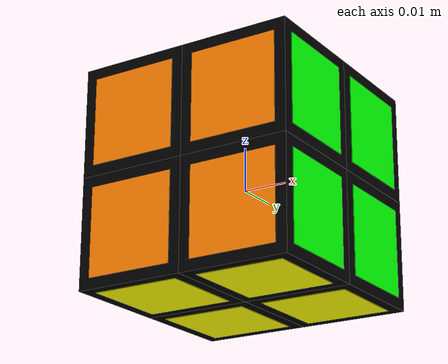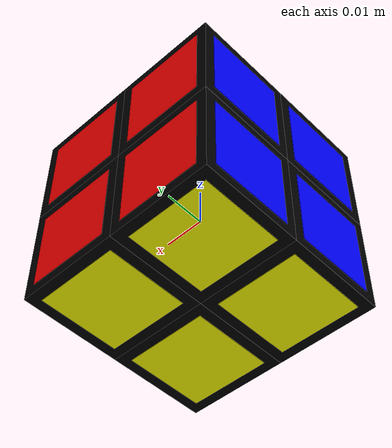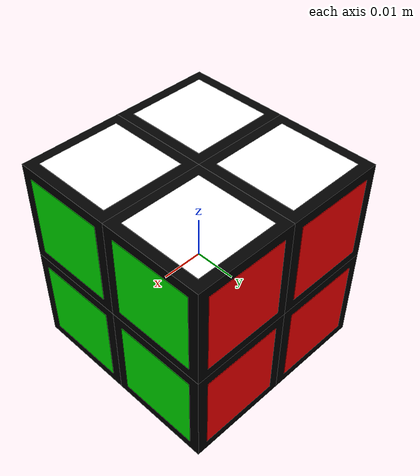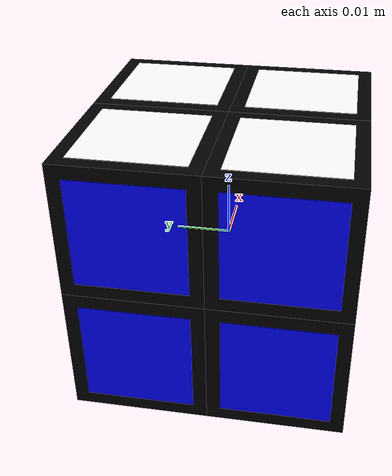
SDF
<?xml version="1.0"?>

<sdf version="1.7">
  <model name="rubiks_cube">
    <link name="center"/>
    <link name="box_0_0_0">
      <pose>-0.0125 -0.0125 -0.0125 0 0 0</pose>
      <inertial>
        <mass>0.03</mass>
        <inertia>
          <ixx>0.0003125</ixx>
          <ixy>0.0</ixy>
          <ixz>0.0</ixz>
          <iyy>0.0003125</iyy>
          <iyz>0.0</iyz>
          <izz>0.0003125</izz>
        </inertia>
      </inertial>
      <collision name="collision">
        <geometry>
          <box>
            <size>0.025 0.025 0.025</size>
          </box>
        </geometry>
      </collision>
      <visual name="black">
        <geometry>
          <box>
            <size>0.025 0.025 0.025</size>
          </box>
        </geometry>
        <material>
          <diffuse>0 0 0 1</diffuse>
        </material>
      </visual>
      <visual name="blue">
        <pose>-0.0125 0 0 0 0 0</pose>
        <geometry>
          <box>
            <size>0.0002 0.02 0.02</size>
          </box>
        </geometry>
        <material>
          <diffuse>0 0 1 1</diffuse>
        </material>
      </visual>
      <visual name="orange">
        <pose>0 -0.0125 0 0 0 0</pose>
        <geometry>
          <box>
            <size>0.02 0.0002 0.02</size>
          </box>
        </geometry>
        <material>
          <diffuse>1 0.5 0 1</diffuse>
        </material>
      </visual>
      <visual name="yellow">
        <pose>0 0 -0.0125 0 0 0</pose>
        <geometry>
          <box>
            <size>0.02 0.02 0.0002</size>
          </box>
        </geometry>
        <material>
          <diffuse>1 1 0 1</diffuse>
        </material>
      </visual>
    </link>
    <joint name="ball_0_0_0" type="fixed">
        <pose>0.0125 0.0125 0.0125 0 0 0</pose> <!-- in child frame -->
        <parent>center</parent>
        <child>box_0_0_0</child>
        <axis>
            <dynamics><damping>0.1</damping></dynamics>
            <limit><effort>0</effort></limit>
        </axis>
    </joint>
    <link name="box_1_0_0">
      <pose>0.0125 -0.0125 -0.0125 0 0 0</pose>
      <inertial>
        <mass>0.03</mass>
        <inertia>
          <ixx>0.0003125</ixx>
          <ixy>0.0</ixy>
          <ixz>0.0</ixz>
          <iyy>0.0003125</iyy>
          <iyz>0.0</iyz>
          <izz>0.0003125</izz>
        </inertia>
      </inertial>
      <collision name="collision">
        <geometry>
          <box>
            <size>0.025 0.025 0.025</size>
          </box>
        </geometry>
      </collision>
      <visual name="black">
        <geometry>
          <box>
            <size>0.025 0.025 0.025</size>
          </box>
        </geometry>
        <material>
          <diffuse>0 0 0 1</diffuse>
        </material>
      </visual>
      <visual name="green">
        <pose>0.0125 0 0 0 0 0</pose>
        <geometry>
          <box>
            <size>0.0002 0.02 0.02</size>
          </box>
        </geometry>
        <material>
          <diffuse>0 1 0 1</diffuse>
        </material>
      </visual>
      <visual name="orange">
        <pose>0 -0.0125 0 0 0 0</pose>
        <geometry>
          <box>
            <size>0.02 0.0002 0.02</size>
          </box>
        </geometry>
        <material>
          <diffuse>1 0.5 0 1</diffuse>
        </material>
      </visual>
      <visual name="yellow">
        <pose>0 0 -0.0125 0 0 0</pose>
        <geometry>
          <box>
            <size>0.02 0.02 0.0002</size>
          </box>
        </geometry>
        <material>
          <diffuse>1 1 0 1</diffuse>
        </material>
      </visual>
    </link>
    <joint name="ball_1_0_0" type="fixed">
        <pose>-0.0125 0.0125 0.0125 0 0 0</pose> <!-- in child frame -->
        <parent>center</parent>
        <child>box_1_0_0</child>
        <axis>
            <dynamics><damping>0.1</damping></dynamics>
            <limit><effort>0</effort></limit>
        </axis>
    </joint>
    <link name="box_0_1_0">
      <pose>-0.0125 0.0125 -0.0125 0 0 0</pose>
      <inertial>
        <mass>0.03</mass>
        <inertia>
          <ixx>0.0003125</ixx>
          <ixy>0.0</ixy>
          <ixz>0.0</ixz>
          <iyy>0.0003125</iyy>
          <iyz>0.0</iyz>
          <izz>0.0003125</izz>
        </inertia>
      </inertial>
      <collision name="collision">
        <geometry>
          <box>
            <size>0.025 0.025 0.025</size>
          </box>
        </geometry>
      </collision>
      <visual name="black">
        <geometry>
          <box>
            <size>0.025 0.025 0.025</size>
          </box>
        </geometry>
        <material>
          <diffuse>0 0 0 1</diffuse>
        </material>
      </visual>
      <visual name="blue">
        <pose>-0.0125 0 0 0 0 0</pose>
        <geometry>
          <box>
            <size>0.0002 0.02 0.02</size>
          </box>
        </geometry>
        <material>
          <diffuse>0 0 1 1</diffuse>
        </material>
      </visual>
      <visual name="red">
        <pose>0 0.0125 0 0 0 0</pose>
        <geometry>
          <box>
            <size>0.02 0.0002 0.02</size>
          </box>
        </geometry>
        <material>
          <diffuse>1 0 0 1</diffuse>
        </material>
      </visual>
      <visual name="yellow">
        <pose>0 0 -0.0125 0 0 0</pose>
        <geometry>
          <box>
            <size>0.02 0.02 0.0002</size>
          </box>
        </geometry>
        <material>
          <diffuse>1 1 0 1</diffuse>
        </material>
      </visual>
    </link>
    <joint name="ball_0_1_0" type="fixed">
        <pose>0.0125 -0.0125 0.0125 0 0 0</pose> <!-- in child frame -->
        <parent>center</parent>
        <child>box_0_1_0</child>
        <axis>
            <dynamics><damping>0.1</damping></dynamics>
            <limit><effort>0</effort></limit>
        </axis>
    </joint>
    <link name="box_1_1_0">
      <pose>0.0125 0.0125 -0.0125 0 0 0</pose>
      <inertial>
        <mass>0.03</mass>
        <inertia>
          <ixx>0.0003125</ixx>
          <ixy>0.0</ixy>
          <ixz>0.0</ixz>
          <iyy>0.0003125</iyy>
          <iyz>0.0</iyz>
          <izz>0.0003125</izz>
        </inertia>
      </inertial>
      <collision name="collision">
        <geometry>
          <box>
            <size>0.025 0.025 0.025</size>
          </box>
        </geometry>
      </collision>
      <visual name="black">
        <geometry>
          <box>
            <size>0.025 0.025 0.025</size>
          </box>
        </geometry>
        <material>
          <diffuse>0 0 0 1</diffuse>
        </material>
      </visual>
      <visual name="green">
        <pose>0.0125 0 0 0 0 0</pose>
        <geometry>
          <box>
            <size>0.0002 0.02 0.02</size>
          </box>
        </geometry>
        <material>
          <diffuse>0 1 0 1</diffuse>
        </material>
      </visual>
      <visual name="red">
        <pose>0 0.0125 0 0 0 0</pose>
        <geometry>
          <box>
            <size>0.02 0.0002 0.02</size>
          </box>
        </geometry>
        <material>
          <diffuse>1 0 0 1</diffuse>
        </material>
      </visual>
      <visual name="yellow">
        <pose>0 0 -0.0125 0 0 0</pose>
        <geometry>
          <box>
            <size>0.02 0.02 0.0002</size>
          </box>
        </geometry>
        <material>
          <diffuse>1 1 0 1</diffuse>
        </material>
      </visual>
    </link>
    <joint name="ball_1_1_0" type="fixed">
        <pose>-0.0125 -0.0125 0.0125 0 0 0</pose> <!-- in child frame -->
        <parent>center</parent>
        <child>box_1_1_0</child>
        <axis>
            <dynamics><damping>0.1</damping></dynamics>
            <limit><effort>0</effort></limit>
        </axis>
    </joint>
    <link name="box_0_0_1">
      <pose>-0.0125 -0.0125 0.0125 0 0 0</pose>
      <inertial>
        <mass>0.03</mass>
        <inertia>
          <ixx>0.0003125</ixx>
          <ixy>0.0</ixy>
          <ixz>0.0</ixz>
          <iyy>0.0003125</iyy>
          <iyz>0.0</iyz>
          <izz>0.0003125</izz>
        </inertia>
      </inertial>
      <collision name="collision">
        <geometry>
          <box>
            <size>0.025 0.025 0.025</size>
          </box>
        </geometry>
      </collision>
      <visual name="black">
        <geometry>
          <box>
            <size>0.025 0.025 0.025</size>
          </box>
        </geometry>
        <material>
          <diffuse>0 0 0 1</diffuse>
        </material>
      </visual>
      <visual name="blue">
        <pose>-0.0125 0 0 0 0 0</pose>
        <geometry>
          <box>
            <size>0.0002 0.02 0.02</size>
          </box>
        </geometry>
        <material>
          <diffuse>0 0 1 1</diffuse>
        </material>
      </visual>
      <visual name="orange">
        <pose>0 -0.0125 0 0 0 0</pose>
        <geometry>
          <box>
            <size>0.02 0.0002 0.02</size>
          </box>
        </geometry>
        <material>
          <diffuse>1 0.5 0 1</diffuse>
        </material>
      </visual>
      <visual name="white">
        <pose>0 0 0.0125 0 0 0</pose>
        <geometry>
          <box>
            <size>0.02 0.02 0.0002</size>
          </box>
        </geometry>
        <material>
          <diffuse>1 1 1 1</diffuse>
        </material>
      </visual>
    </link>
    <joint name="ball_0_0_1" type="fixed">
        <pose>0.0125 0.0125 -0.0125 0 0 0</pose> <!-- in child frame -->
        <parent>center</parent>
        <child>box_0_0_1</child>
        <axis>
            <dynamics><damping>0.1</damping></dynamics>
            <limit><effort>0</effort></limit>
        </axis>
    </joint>
    <link name="box_1_0_1">
      <pose>0.0125 -0.0125 0.0125 0 0 0</pose>
      <inertial>
        <mass>0.03</mass>
        <inertia>
          <ixx>0.0003125</ixx>
          <ixy>0.0</ixy>
          <ixz>0.0</ixz>
          <iyy>0.0003125</iyy>
          <iyz>0.0</iyz>
          <izz>0.0003125</izz>
        </inertia>
      </inertial>
      <collision name="collision">
        <geometry>
          <box>
            <size>0.025 0.025 0.025</size>
          </box>
        </geometry>
      </collision>
      <visual name="black">
        <geometry>
          <box>
            <size>0.025 0.025 0.025</size>
          </box>
        </geometry>
        <material>
          <diffuse>0 0 0 1</diffuse>
        </material>
      </visual>
      <visual name="green">
        <pose>0.0125 0 0 0 0 0</pose>
        <geometry>
          <box>
            <size>0.0002 0.02 0.02</size>
          </box>
        </geometry>
        <material>
          <diffuse>0 1 0 1</diffuse>
        </material>
      </visual>
      <visual name="orange">
        <pose>0 -0.0125 0 0 0 0</pose>
        <geometry>
          <box>
            <size>0.02 0.0002 0.02</size>
          </box>
        </geometry>
        <material>
          <diffuse>1 0.5 0 1</diffuse>
        </material>
      </visual>
      <visual name="white">
        <pose>0 0 0.0125 0 0 0</pose>
        <geometry>
          <box>
            <size>0.02 0.02 0.0002</size>
          </box>
        </geometry>
        <material>
          <diffuse>1 1 1 1</diffuse>
        </material>
      </visual>
    </link>
    <joint name="ball_1_0_1" type="fixed">
        <pose>-0.0125 0.0125 -0.0125 0 0 0</pose> <!-- in child frame -->
        <parent>center</parent>
        <child>box_1_0_1</child>
        <axis>
            <dynamics><damping>0.1</damping></dynamics>
            <limit><effort>0</effort></limit>
        </axis>
    </joint>
    <link name="box_0_1_1">
      <pose>-0.0125 0.0125 0.0125 0 0 0</pose>
      <inertial>
        <mass>0.03</mass>
        <inertia>
          <ixx>0.0003125</ixx>
          <ixy>0.0</ixy>
          <ixz>0.0</ixz>
          <iyy>0.0003125</iyy>
          <iyz>0.0</iyz>
          <izz>0.0003125</izz>
        </inertia>
      </inertial>
      <collision name="collision">
        <geometry>
          <box>
            <size>0.025 0.025 0.025</size>
          </box>
        </geometry>
      </collision>
      <visual name="black">
        <geometry>
          <box>
            <size>0.025 0.025 0.025</size>
          </box>
        </geometry>
        <material>
          <diffuse>0 0 0 1</diffuse>
        </material>
      </visual>
      <visual name="blue">
        <pose>-0.0125 0 0 0 0 0</pose>
        <geometry>
          <box>
            <size>0.0002 0.02 0.02</size>
          </box>
        </geometry>
        <material>
          <diffuse>0 0 1 1</diffuse>
        </material>
      </visual>
      <visual name="red">
        <pose>0 0.0125 0 0 0 0</pose>
        <geometry>
          <box>
            <size>0.02 0.0002 0.02</size>
          </box>
        </geometry>
        <material>
          <diffuse>1 0 0 1</diffuse>
        </material>
      </visual>
      <visual name="white">
        <pose>0 0 0.0125 0 0 0</pose>
        <geometry>
          <box>
            <size>0.02 0.02 0.0002</size>
          </box>
        </geometry>
        <material>
          <diffuse>1 1 1 1</diffuse>
        </material>
      </visual>
    </link>
    <joint name="ball_0_1_1" type="fixed">
        <pose>0.0125 -0.0125 -0.0125 0 0 0</pose> <!-- in child frame -->
        <parent>center</parent>
        <child>box_0_1_1</child>
        <axis>
            <dynamics><damping>0.1</damping></dynamics>
            <limit><effort>0</effort></limit>
        </axis>
    </joint>
    <link name="box_1_1_1">
      <pose>0.0125 0.0125 0.0125 0 0 0</pose>
      <inertial>
        <mass>0.03</mass>
        <inertia>
          <ixx>0.0003125</ixx>
          <ixy>0.0</ixy>
          <ixz>0.0</ixz>
          <iyy>0.0003125</iyy>
          <iyz>0.0</iyz>
          <izz>0.0003125</izz>
        </inertia>
      </inertial>
      <collision name="collision">
        <geometry>
          <box>
            <size>0.025 0.025 0.025</size>
          </box>
        </geometry>
      </collision>
      <visual name="black">
        <geometry>
          <box>
            <size>0.025 0.025 0.025</size>
          </box>
        </geometry>
        <material>
          <diffuse>0 0 0 1</diffuse>
        </material>
      </visual>
      <visual name="green">
        <pose>0.0125 0 0 0 0 0</pose>
        <geometry>
          <box>
            <size>0.0002 0.02 0.02</size>
          </box>
        </geometry>
        <material>
          <diffuse>0 1 0 1</diffuse>
        </material>
      </visual>
      <visual name="red">
        <pose>0 0.0125 0 0 0 0</pose>
        <geometry>
          <box>
            <size>0.02 0.0002 0.02</size>
          </box>
        </geometry>
        <material>
          <diffuse>1 0 0 1</diffuse>
        </material>
      </visual>
      <visual name="white">
        <pose>0 0 0.0125 0 0 0</pose>
        <geometry>
          <box>
            <size>0.02 0.02 0.0002</size>
          </box>
        </geometry>
        <material>
          <diffuse>1 1 1 1</diffuse>
        </material>
      </visual>
    </link>
    <joint name="ball_1_1_1" type="fixed">
        <pose>-0.0125 -0.0125 -0.0125 0 0 0</pose> <!-- in child frame -->
        <parent>center</parent>
        <child>box_1_1_1</child>
        <axis>
            <dynamics><damping>0.1</damping></dynamics>
            <limit><effort>0</effort></limit>
        </axis>
    </joint>
  </model>
</sdf>
